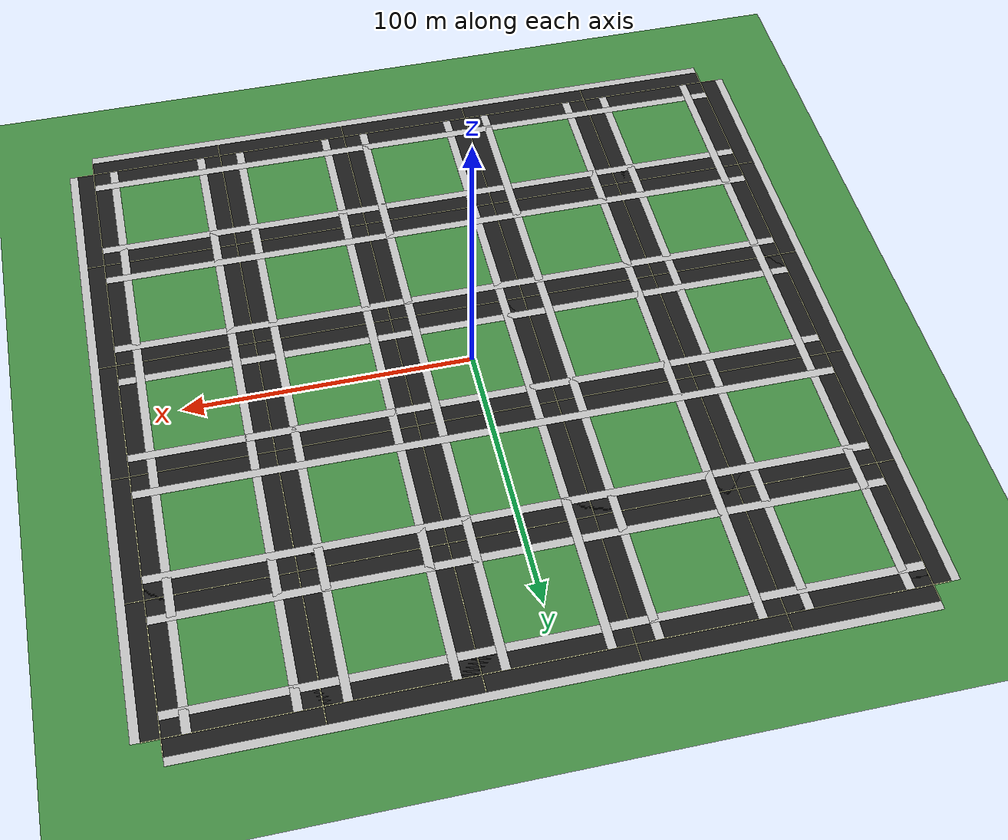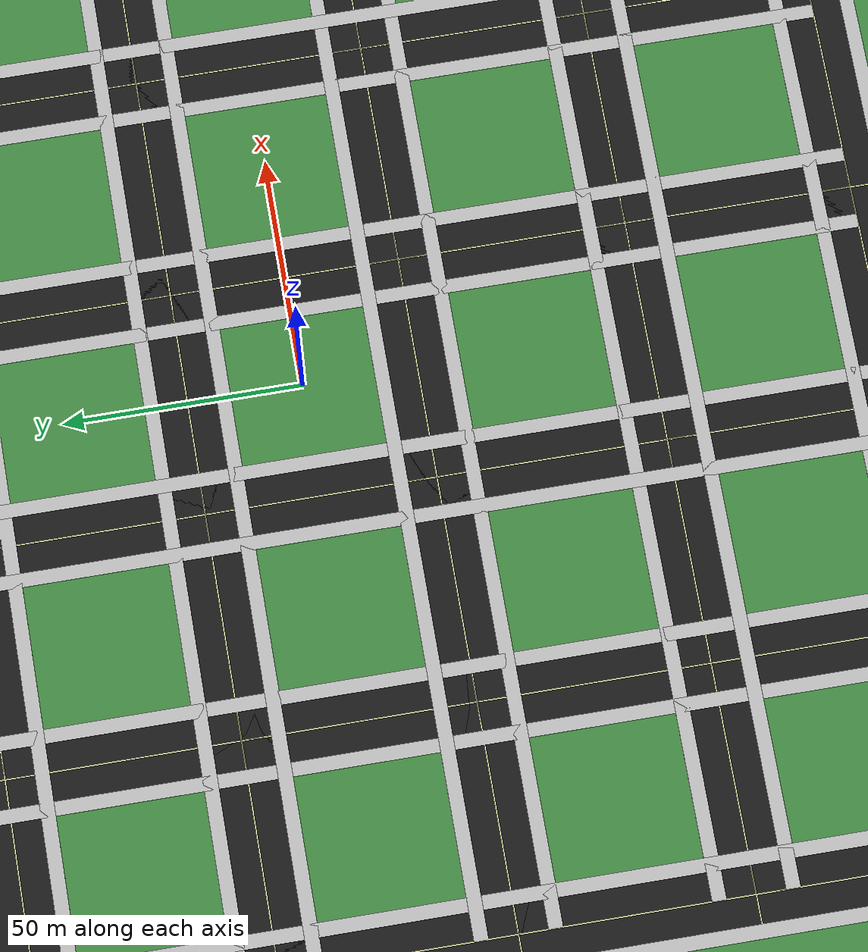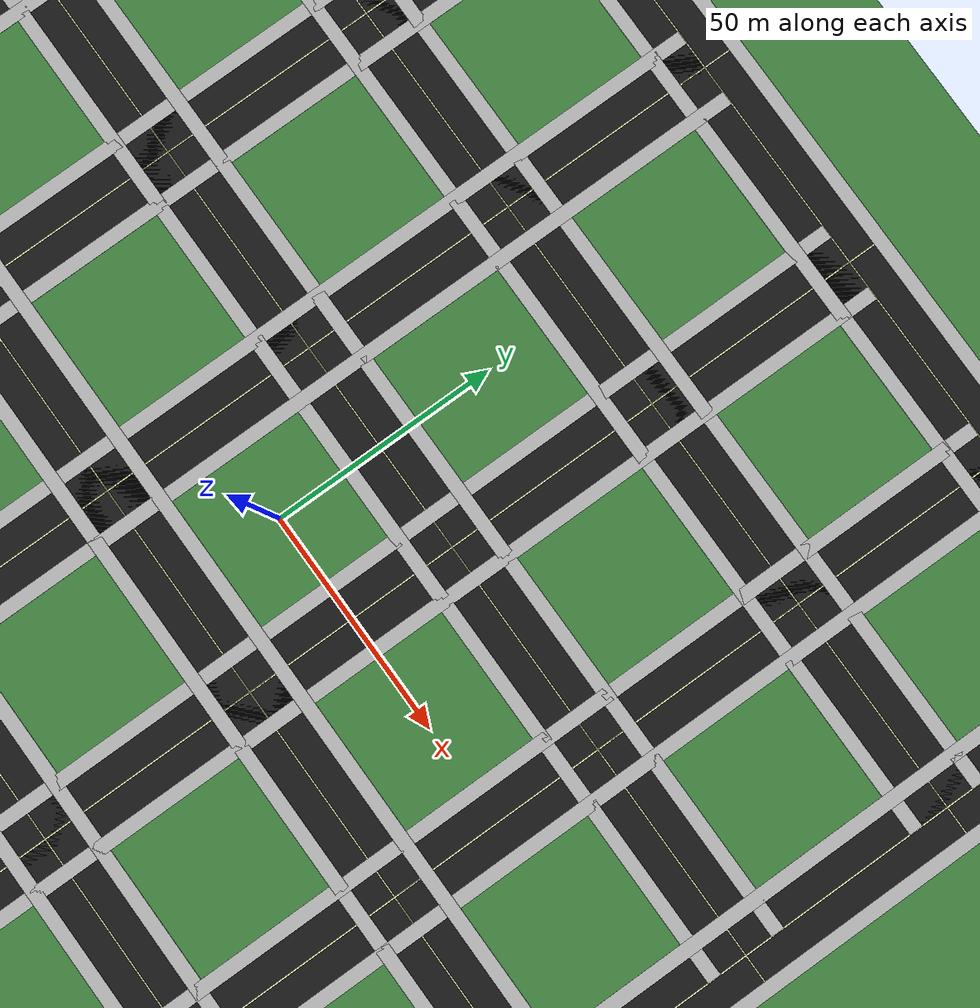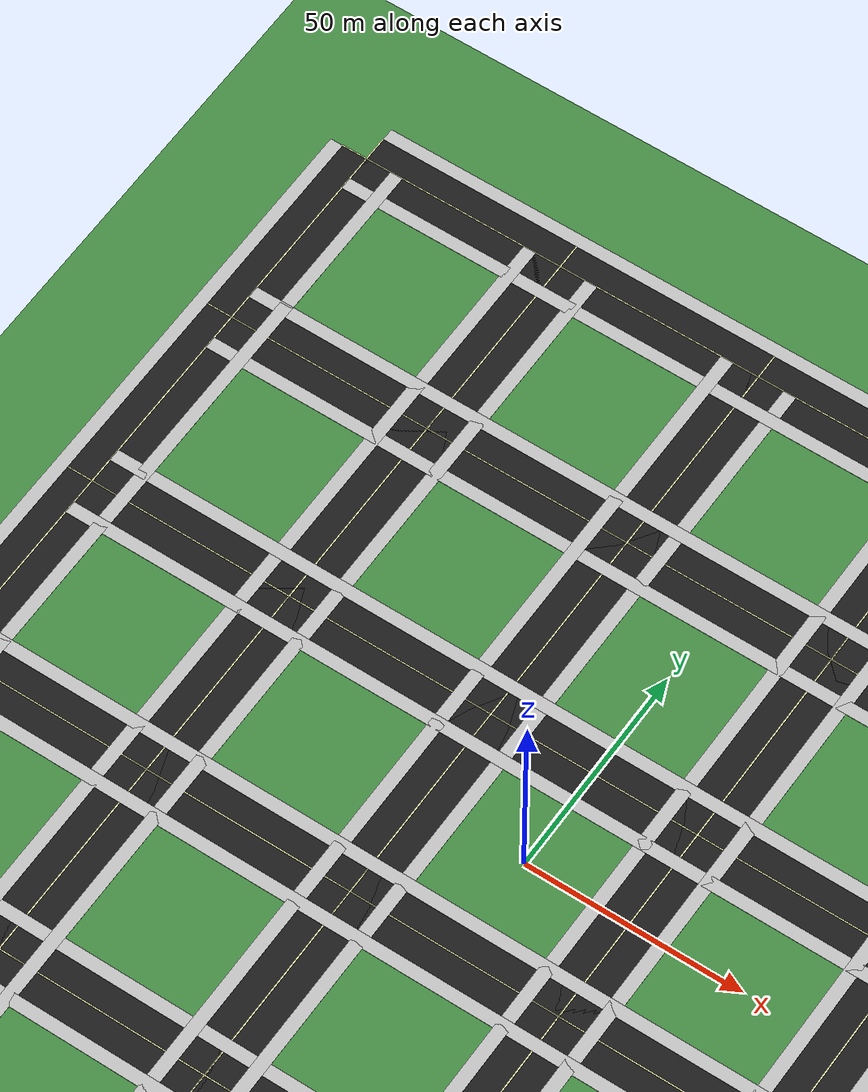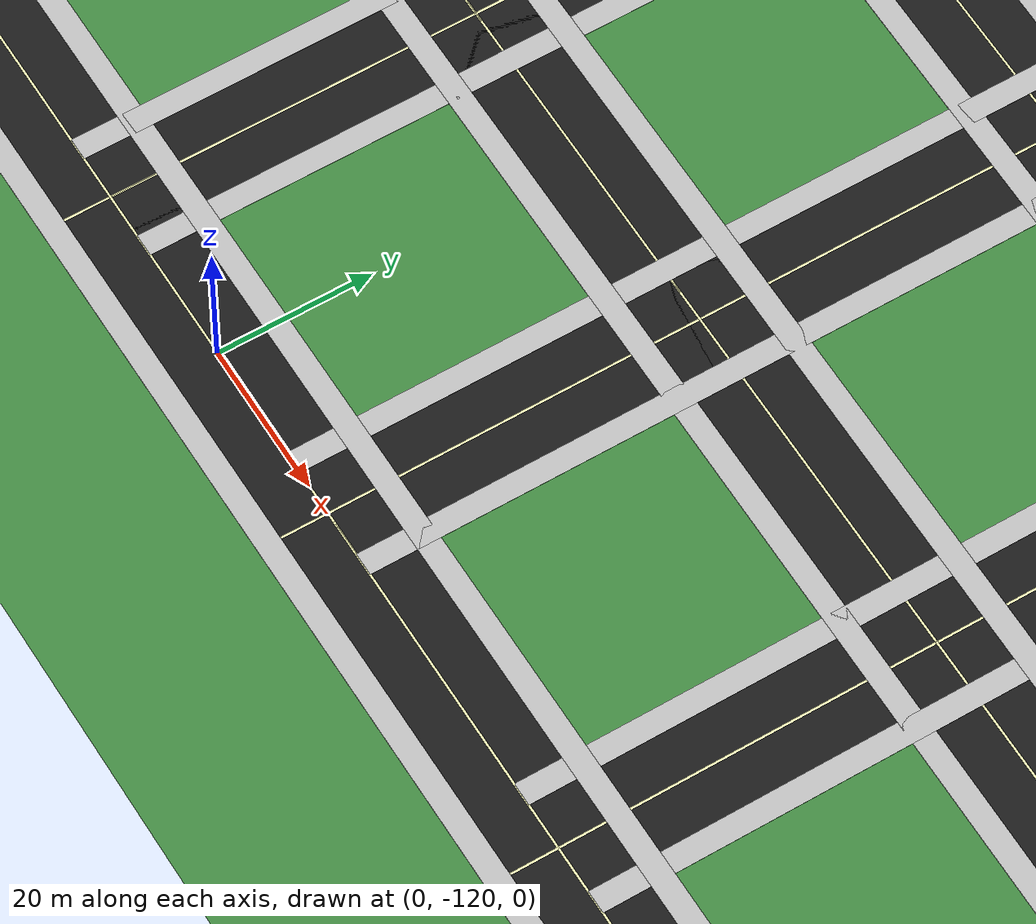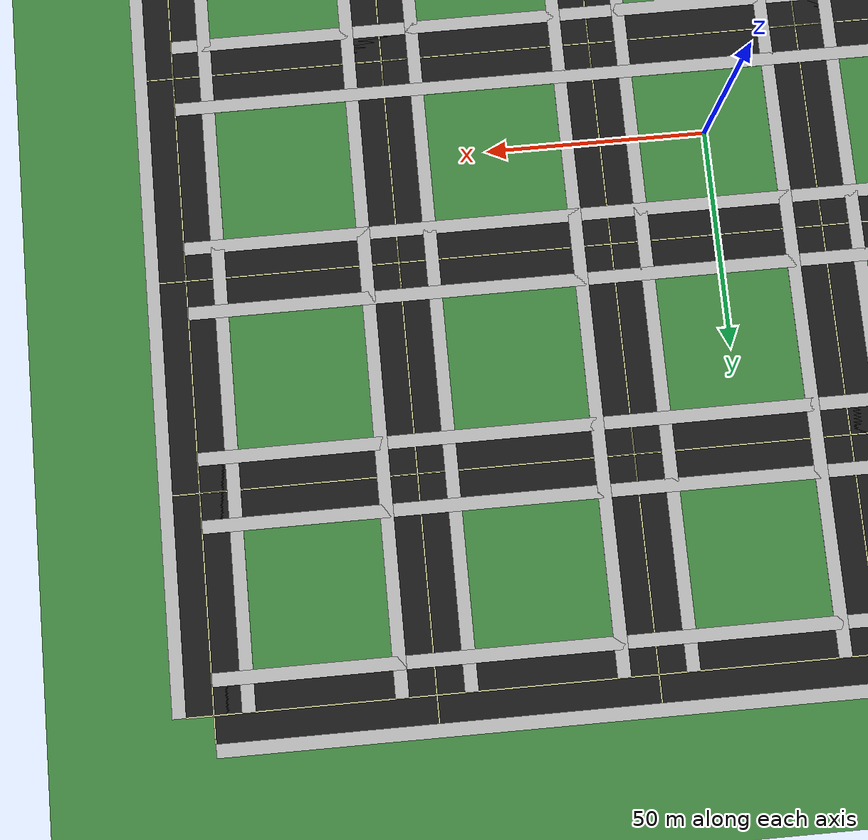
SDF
<sdf version="1.9">
 <world name="earthquake">
  <physics type="dart"><max_step_size>0.004</max_step_size><real_time_factor>1</real_time_factor></physics>
  <plugin filename="gz-sim-physics-system" name="gz::sim::systems::Physics"/>
  <plugin filename="gz-sim-user-commands-system" name="gz::sim::systems::UserCommands"/>
  <plugin filename="gz-sim-scene-broadcaster-system" name="gz::sim::systems::SceneBroadcaster"/>
  <scene>
   <ambient>0.65 0.65 0.65 1</ambient>
   <background>0.72 0.84 0.97 1</background>
   <grid>false</grid>
   <origin_visual>false</origin_visual>
  </scene>
  <light name="sun" type="directional">
   <pose>0 0 200 0 0 0</pose>
   <diffuse>1 1 1 1</diffuse>
   <specular>0.2 0.2 0.2 1</specular>
   <direction>-0.4 0.2 -1</direction>
  </light>
  <model name="ground_plane">
   <static>true</static>
   <link name="link">
    <collision name="collision">
     <geometry><plane><normal>0 0 1</normal><size>1000 1000</size></plane></geometry>
    </collision>
    <visual name="visual">
     <geometry><plane><normal>0 0 1</normal><size>1000 1000</size></plane></geometry>
     <material><ambient>0.25 0.52 0.25 1</ambient><diffuse>0.25 0.52 0.25 1</diffuse></material>
    </visual>
   </link>
  </model>
  <model name="hroad_0">
   <static>true</static>
   <pose>0.00 -120.00 0.010 0 0 0</pose>
   <link name="link">
    <visual name="visual">
     <geometry><box><size>240.000 12.000 0.020</size></box></geometry>
     <material><ambient>0.10 0.10 0.10 1</ambient><diffuse>0.10 0.10 0.10 1</diffuse></material>
    </visual>
   </link>
  </model>
  <model name="hside_top_0">
   <static>true</static>
   <pose>0.00 -112.50 0.030 0 0 0</pose>
   <link name="link">
    <visual name="visual">
     <geometry><box><size>240.000 3.000 0.060</size></box></geometry>
     <material><ambient>0.72 0.72 0.72 1</ambient><diffuse>0.72 0.72 0.72 1</diffuse></material>
    </visual>
   </link>
  </model>
  <model name="hside_bottom_0">
   <static>true</static>
   <pose>0.00 -127.50 0.030 0 0 0</pose>
   <link name="link">
    <visual name="visual">
     <geometry><box><size>240.000 3.000 0.060</size></box></geometry>
     <material><ambient>0.72 0.72 0.72 1</ambient><diffuse>0.72 0.72 0.72 1</diffuse></material>
    </visual>
   </link>
  </model>
  <model name="hline_0">
   <static>true</static>
   <pose>0.00 -120.00 0.041 0 0 0</pose>
   <link name="link">
    <visual name="visual">
     <geometry><box><size>240.000 0.300 0.005</size></box></geometry>
     <material><ambient>0.95 0.95 0.70 1</ambient><diffuse>0.95 0.95 0.70 1</diffuse></material>
    </visual>
   </link>
  </model>
  <model name="hroad_1">
   <static>true</static>
   <pose>0.00 -72.00 0.010 0 0 0</pose>
   <link name="link">
    <visual name="visual">
     <geometry><box><size>240.000 12.000 0.020</size></box></geometry>
     <material><ambient>0.10 0.10 0.10 1</ambient><diffuse>0.10 0.10 0.10 1</diffuse></material>
    </visual>
   </link>
  </model>
  <model name="hside_top_1">
   <static>true</static>
   <pose>0.00 -64.50 0.030 0 0 0</pose>
   <link name="link">
    <visual name="visual">
     <geometry><box><size>240.000 3.000 0.060</size></box></geometry>
     <material><ambient>0.72 0.72 0.72 1</ambient><diffuse>0.72 0.72 0.72 1</diffuse></material>
    </visual>
   </link>
  </model>
  <model name="hside_bottom_1">
   <static>true</static>
   <pose>0.00 -79.50 0.030 0 0 0</pose>
   <link name="link">
    <visual name="visual">
     <geometry><box><size>240.000 3.000 0.060</size></box></geometry>
     <material><ambient>0.72 0.72 0.72 1</ambient><diffuse>0.72 0.72 0.72 1</diffuse></material>
    </visual>
   </link>
  </model>
  <model name="hline_1">
   <static>true</static>
   <pose>0.00 -72.00 0.041 0 0 0</pose>
   <link name="link">
    <visual name="visual">
     <geometry><box><size>240.000 0.300 0.005</size></box></geometry>
     <material><ambient>0.95 0.95 0.70 1</ambient><diffuse>0.95 0.95 0.70 1</diffuse></material>
    </visual>
   </link>
  </model>
  <model name="hroad_2">
   <static>true</static>
   <pose>0.00 -24.00 0.010 0 0 0</pose>
   <link name="link">
    <visual name="visual">
     <geometry><box><size>240.000 12.000 0.020</size></box></geometry>
     <material><ambient>0.10 0.10 0.10 1</ambient><diffuse>0.10 0.10 0.10 1</diffuse></material>
    </visual>
   </link>
  </model>
  <model name="hside_top_2">
   <static>true</static>
   <pose>0.00 -16.50 0.030 0 0 0</pose>
   <link name="link">
    <visual name="visual">
     <geometry><box><size>240.000 3.000 0.060</size></box></geometry>
     <material><ambient>0.72 0.72 0.72 1</ambient><diffuse>0.72 0.72 0.72 1</diffuse></material>
    </visual>
   </link>
  </model>
  <model name="hside_bottom_2">
   <static>true</static>
   <pose>0.00 -31.50 0.030 0 0 0</pose>
   <link name="link">
    <visual name="visual">
     <geometry><box><size>240.000 3.000 0.060</size></box></geometry>
     <material><ambient>0.72 0.72 0.72 1</ambient><diffuse>0.72 0.72 0.72 1</diffuse></material>
    </visual>
   </link>
  </model>
  <model name="hline_2">
   <static>true</static>
   <pose>0.00 -24.00 0.041 0 0 0</pose>
   <link name="link">
    <visual name="visual">
     <geometry><box><size>240.000 0.300 0.005</size></box></geometry>
     <material><ambient>0.95 0.95 0.70 1</ambient><diffuse>0.95 0.95 0.70 1</diffuse></material>
    </visual>
   </link>
  </model>
  <model name="hroad_3">
   <static>true</static>
   <pose>0.00 24.00 0.010 0 0 0</pose>
   <link name="link">
    <visual name="visual">
     <geometry><box><size>240.000 12.000 0.020</size></box></geometry>
     <material><ambient>0.10 0.10 0.10 1</ambient><diffuse>0.10 0.10 0.10 1</diffuse></material>
    </visual>
   </link>
  </model>
  <model name="hside_top_3">
   <static>true</static>
   <pose>0.00 31.50 0.030 0 0 0</pose>
   <link name="link">
    <visual name="visual">
     <geometry><box><size>240.000 3.000 0.060</size></box></geometry>
     <material><ambient>0.72 0.72 0.72 1</ambient><diffuse>0.72 0.72 0.72 1</diffuse></material>
    </visual>
   </link>
  </model>
  <model name="hside_bottom_3">
   <static>true</static>
   <pose>0.00 16.50 0.030 0 0 0</pose>
   <link name="link">
    <visual name="visual">
     <geometry><box><size>240.000 3.000 0.060</size></box></geometry>
     <material><ambient>0.72 0.72 0.72 1</ambient><diffuse>0.72 0.72 0.72 1</diffuse></material>
    </visual>
   </link>
  </model>
  <model name="hline_3">
   <static>true</static>
   <pose>0.00 24.00 0.041 0 0 0</pose>
   <link name="link">
    <visual name="visual">
     <geometry><box><size>240.000 0.300 0.005</size></box></geometry>
     <material><ambient>0.95 0.95 0.70 1</ambient><diffuse>0.95 0.95 0.70 1</diffuse></material>
    </visual>
   </link>
  </model>
  <model name="hroad_4">
   <static>true</static>
   <pose>0.00 72.00 0.010 0 0 0</pose>
   <link name="link">
    <visual name="visual">
     <geometry><box><size>240.000 12.000 0.020</size></box></geometry>
     <material><ambient>0.10 0.10 0.10 1</ambient><diffuse>0.10 0.10 0.10 1</diffuse></material>
    </visual>
   </link>
  </model>
  <model name="hside_top_4">
   <static>true</static>
   <pose>0.00 79.50 0.030 0 0 0</pose>
   <link name="link">
    <visual name="visual">
     <geometry><box><size>240.000 3.000 0.060</size></box></geometry>
     <material><ambient>0.72 0.72 0.72 1</ambient><diffuse>0.72 0.72 0.72 1</diffuse></material>
    </visual>
   </link>
  </model>
  <model name="hside_bottom_4">
   <static>true</static>
   <pose>0.00 64.50 0.030 0 0 0</pose>
   <link name="link">
    <visual name="visual">
     <geometry><box><size>240.000 3.000 0.060</size></box></geometry>
     <material><ambient>0.72 0.72 0.72 1</ambient><diffuse>0.72 0.72 0.72 1</diffuse></material>
    </visual>
   </link>
  </model>
  <model name="hline_4">
   <static>true</static>
   <pose>0.00 72.00 0.041 0 0 0</pose>
   <link name="link">
    <visual name="visual">
     <geometry><box><size>240.000 0.300 0.005</size></box></geometry>
     <material><ambient>0.95 0.95 0.70 1</ambient><diffuse>0.95 0.95 0.70 1</diffuse></material>
    </visual>
   </link>
  </model>
  <model name="hroad_5">
   <static>true</static>
   <pose>0.00 120.00 0.010 0 0 0</pose>
   <link name="link">
    <visual name="visual">
     <geometry><box><size>240.000 12.000 0.020</size></box></geometry>
     <material><ambient>0.10 0.10 0.10 1</ambient><diffuse>0.10 0.10 0.10 1</diffuse></material>
    </visual>
   </link>
  </model>
  <model name="hside_top_5">
   <static>true</static>
   <pose>0.00 127.50 0.030 0 0 0</pose>
   <link name="link">
    <visual name="visual">
     <geometry><box><size>240.000 3.000 0.060</size></box></geometry>
     <material><ambient>0.72 0.72 0.72 1</ambient><diffuse>0.72 0.72 0.72 1</diffuse></material>
    </visual>
   </link>
  </model>
  <model name="hside_bottom_5">
   <static>true</static>
   <pose>0.00 112.50 0.030 0 0 0</pose>
   <link name="link">
    <visual name="visual">
     <geometry><box><size>240.000 3.000 0.060</size></box></geometry>
     <material><ambient>0.72 0.72 0.72 1</ambient><diffuse>0.72 0.72 0.72 1</diffuse></material>
    </visual>
   </link>
  </model>
  <model name="hline_5">
   <static>true</static>
   <pose>0.00 120.00 0.041 0 0 0</pose>
   <link name="link">
    <visual name="visual">
     <geometry><box><size>240.000 0.300 0.005</size></box></geometry>
     <material><ambient>0.95 0.95 0.70 1</ambient><diffuse>0.95 0.95 0.70 1</diffuse></material>
    </visual>
   </link>
  </model>
  <model name="vroad_0">
   <static>true</static>
   <pose>-120.00 0.00 0.010 0 0 0</pose>
   <link name="link">
    <visual name="visual">
     <geometry><box><size>12.000 240.000 0.020</size></box></geometry>
     <material><ambient>0.10 0.10 0.10 1</ambient><diffuse>0.10 0.10 0.10 1</diffuse></material>
    </visual>
   </link>
  </model>
  <model name="vside_left_0">
   <static>true</static>
   <pose>-127.50 0.00 0.030 0 0 0</pose>
   <link name="link">
    <visual name="visual">
     <geometry><box><size>3.000 240.000 0.060</size></box></geometry>
     <material><ambient>0.72 0.72 0.72 1</ambient><diffuse>0.72 0.72 0.72 1</diffuse></material>
    </visual>
   </link>
  </model>
  <model name="vside_right_0">
   <static>true</static>
   <pose>-112.50 0.00 0.030 0 0 0</pose>
   <link name="link">
    <visual name="visual">
     <geometry><box><size>3.000 240.000 0.060</size></box></geometry>
     <material><ambient>0.72 0.72 0.72 1</ambient><diffuse>0.72 0.72 0.72 1</diffuse></material>
    </visual>
   </link>
  </model>
  <model name="vline_0">
   <static>true</static>
   <pose>-120.00 0.00 0.041 0 0 0</pose>
   <link name="link">
    <visual name="visual">
     <geometry><box><size>0.300 240.000 0.005</size></box></geometry>
     <material><ambient>0.95 0.95 0.70 1</ambient><diffuse>0.95 0.95 0.70 1</diffuse></material>
    </visual>
   </link>
  </model>
  <model name="vroad_1">
   <static>true</static>
   <pose>-72.00 0.00 0.010 0 0 0</pose>
   <link name="link">
    <visual name="visual">
     <geometry><box><size>12.000 240.000 0.020</size></box></geometry>
     <material><ambient>0.10 0.10 0.10 1</ambient><diffuse>0.10 0.10 0.10 1</diffuse></material>
    </visual>
   </link>
  </model>
  <model name="vside_left_1">
   <static>true</static>
   <pose>-79.50 0.00 0.030 0 0 0</pose>
   <link name="link">
    <visual name="visual">
     <geometry><box><size>3.000 240.000 0.060</size></box></geometry>
     <material><ambient>0.72 0.72 0.72 1</ambient><diffuse>0.72 0.72 0.72 1</diffuse></material>
    </visual>
   </link>
  </model>
  <model name="vside_right_1">
   <static>true</static>
   <pose>-64.50 0.00 0.030 0 0 0</pose>
   <link name="link">
    <visual name="visual">
     <geometry><box><size>3.000 240.000 0.060</size></box></geometry>
     <material><ambient>0.72 0.72 0.72 1</ambient><diffuse>0.72 0.72 0.72 1</diffuse></material>
    </visual>
   </link>
  </model>
  <model name="vline_1">
   <static>true</static>
   <pose>-72.00 0.00 0.041 0 0 0</pose>
   <link name="link">
    <visual name="visual">
     <geometry><box><size>0.300 240.000 0.005</size></box></geometry>
     <material><ambient>0.95 0.95 0.70 1</ambient><diffuse>0.95 0.95 0.70 1</diffuse></material>
    </visual>
   </link>
  </model>
  <model name="vroad_2">
   <static>true</static>
   <pose>-24.00 0.00 0.010 0 0 0</pose>
   <link name="link">
    <visual name="visual">
     <geometry><box><size>12.000 240.000 0.020</size></box></geometry>
     <material><ambient>0.10 0.10 0.10 1</ambient><diffuse>0.10 0.10 0.10 1</diffuse></material>
    </visual>
   </link>
  </model>
  <model name="vside_left_2">
   <static>true</static>
   <pose>-31.50 0.00 0.030 0 0 0</pose>
   <link name="link">
    <visual name="visual">
     <geometry><box><size>3.000 240.000 0.060</size></box></geometry>
     <material><ambient>0.72 0.72 0.72 1</ambient><diffuse>0.72 0.72 0.72 1</diffuse></material>
    </visual>
   </link>
  </model>
  <model name="vside_right_2">
   <static>true</static>
   <pose>-16.50 0.00 0.030 0 0 0</pose>
   <link name="link">
    <visual name="visual">
     <geometry><box><size>3.000 240.000 0.060</size></box></geometry>
     <material><ambient>0.72 0.72 0.72 1</ambient><diffuse>0.72 0.72 0.72 1</diffuse></material>
    </visual>
   </link>
  </model>
  <model name="vline_2">
   <static>true</static>
   <pose>-24.00 0.00 0.041 0 0 0</pose>
   <link name="link">
    <visual name="visual">
     <geometry><box><size>0.300 240.000 0.005</size></box></geometry>
     <material><ambient>0.95 0.95 0.70 1</ambient><diffuse>0.95 0.95 0.70 1</diffuse></material>
    </visual>
   </link>
  </model>
  <model name="vroad_3">
   <static>true</static>
   <pose>24.00 0.00 0.010 0 0 0</pose>
   <link name="link">
    <visual name="visual">
     <geometry><box><size>12.000 240.000 0.020</size></box></geometry>
     <material><ambient>0.10 0.10 0.10 1</ambient><diffuse>0.10 0.10 0.10 1</diffuse></material>
    </visual>
   </link>
  </model>
  <model name="vside_left_3">
   <static>true</static>
   <pose>16.50 0.00 0.030 0 0 0</pose>
   <link name="link">
    <visual name="visual">
     <geometry><box><size>3.000 240.000 0.060</size></box></geometry>
     <material><ambient>0.72 0.72 0.72 1</ambient><diffuse>0.72 0.72 0.72 1</diffuse></material>
    </visual>
   </link>
  </model>
  <model name="vside_right_3">
   <static>true</static>
   <pose>31.50 0.00 0.030 0 0 0</pose>
   <link name="link">
    <visual name="visual">
     <geometry><box><size>3.000 240.000 0.060</size></box></geometry>
     <material><ambient>0.72 0.72 0.72 1</ambient><diffuse>0.72 0.72 0.72 1</diffuse></material>
    </visual>
   </link>
  </model>
  <model name="vline_3">
   <static>true</static>
   <pose>24.00 0.00 0.041 0 0 0</pose>
   <link name="link">
    <visual name="visual">
     <geometry><box><size>0.300 240.000 0.005</size></box></geometry>
     <material><ambient>0.95 0.95 0.70 1</ambient><diffuse>0.95 0.95 0.70 1</diffuse></material>
    </visual>
   </link>
  </model>
  <model name="vroad_4">
   <static>true</static>
   <pose>72.00 0.00 0.010 0 0 0</pose>
   <link name="link">
    <visual name="visual">
     <geometry><box><size>12.000 240.000 0.020</size></box></geometry>
     <material><ambient>0.10 0.10 0.10 1</ambient><diffuse>0.10 0.10 0.10 1</diffuse></material>
    </visual>
   </link>
  </model>
  <model name="vside_left_4">
   <static>true</static>
   <pose>64.50 0.00 0.030 0 0 0</pose>
   <link name="link">
    <visual name="visual">
     <geometry><box><size>3.000 240.000 0.060</size></box></geometry>
     <material><ambient>0.72 0.72 0.72 1</ambient><diffuse>0.72 0.72 0.72 1</diffuse></material>
    </visual>
   </link>
  </model>
  <model name="vside_right_4">
   <static>true</static>
   <pose>79.50 0.00 0.030 0 0 0</pose>
   <link name="link">
    <visual name="visual">
     <geometry><box><size>3.000 240.000 0.060</size></box></geometry>
     <material><ambient>0.72 0.72 0.72 1</ambient><diffuse>0.72 0.72 0.72 1</diffuse></material>
    </visual>
   </link>
  </model>
  <model name="vline_4">
   <static>true</static>
   <pose>72.00 0.00 0.041 0 0 0</pose>
   <link name="link">
    <visual name="visual">
     <geometry><box><size>0.300 240.000 0.005</size></box></geometry>
     <material><ambient>0.95 0.95 0.70 1</ambient><diffuse>0.95 0.95 0.70 1</diffuse></material>
    </visual>
   </link>
  </model>
  <model name="vroad_5">
   <static>true</static>
   <pose>120.00 0.00 0.010 0 0 0</pose>
   <link name="link">
    <visual name="visual">
     <geometry><box><size>12.000 240.000 0.020</size></box></geometry>
     <material><ambient>0.10 0.10 0.10 1</ambient><diffuse>0.10 0.10 0.10 1</diffuse></material>
    </visual>
   </link>
  </model>
  <model name="vside_left_5">
   <static>true</static>
   <pose>112.50 0.00 0.030 0 0 0</pose>
   <link name="link">
    <visual name="visual">
     <geometry><box><size>3.000 240.000 0.060</size></box></geometry>
     <material><ambient>0.72 0.72 0.72 1</ambient><diffuse>0.72 0.72 0.72 1</diffuse></material>
    </visual>
   </link>
  </model>
  <model name="vside_right_5">
   <static>true</static>
   <pose>127.50 0.00 0.030 0 0 0</pose>
   <link name="link">
    <visual name="visual">
     <geometry><box><size>3.000 240.000 0.060</size></box></geometry>
     <material><ambient>0.72 0.72 0.72 1</ambient><diffuse>0.72 0.72 0.72 1</diffuse></material>
    </visual>
   </link>
  </model>
  <model name="vline_5">
   <static>true</static>
   <pose>120.00 0.00 0.041 0 0 0</pose>
   <link name="link">
    <visual name="visual">
     <geometry><box><size>0.300 240.000 0.005</size></box></geometry>
     <material><ambient>0.95 0.95 0.70 1</ambient><diffuse>0.95 0.95 0.70 1</diffuse></material>
    </visual>
   </link>
  </model>
  <model name="intersection_0_0">
   <static>true</static>
   <pose>-120.00 -120.00 0.041 0 0 0</pose>
   <link name="link">
    <visual name="visual">
     <geometry><box><size>12.000 0.300 0.005</size></box></geometry>
     <material><ambient>0.95 0.95 0.70 1</ambient><diffuse>0.95 0.95 0.70 1</diffuse></material>
    </visual>
   </link>
  </model>
  <model name="intersection_cross_0_0">
   <static>true</static>
   <pose>-120.00 -120.00 0.041 0 0 0</pose>
   <link name="link">
    <visual name="visual">
     <geometry><box><size>0.300 12.000 0.005</size></box></geometry>
     <material><ambient>0.95 0.95 0.70 1</ambient><diffuse>0.95 0.95 0.70 1</diffuse></material>
    </visual>
   </link>
  </model>
  <model name="intersection_0_1">
   <static>true</static>
   <pose>-72.00 -120.00 0.041 0 0 0</pose>
   <link name="link">
    <visual name="visual">
     <geometry><box><size>12.000 0.300 0.005</size></box></geometry>
     <material><ambient>0.95 0.95 0.70 1</ambient><diffuse>0.95 0.95 0.70 1</diffuse></material>
    </visual>
   </link>
  </model>
  <model name="intersection_cross_0_1">
   <static>true</static>
   <pose>-72.00 -120.00 0.041 0 0 0</pose>
   <link name="link">
    <visual name="visual">
     <geometry><box><size>0.300 12.000 0.005</size></box></geometry>
     <material><ambient>0.95 0.95 0.70 1</ambient><diffuse>0.95 0.95 0.70 1</diffuse></material>
    </visual>
   </link>
  </model>
  <model name="intersection_0_2">
   <static>true</static>
   <pose>-24.00 -120.00 0.041 0 0 0</pose>
   <link name="link">
    <visual name="visual">
     <geometry><box><size>12.000 0.300 0.005</size></box></geometry>
     <material><ambient>0.95 0.95 0.70 1</ambient><diffuse>0.95 0.95 0.70 1</diffuse></material>
    </visual>
   </link>
  </model>
  <model name="intersection_cross_0_2">
   <static>true</static>
   <pose>-24.00 -120.00 0.041 0 0 0</pose>
   <link name="link">
    <visual name="visual">
     <geometry><box><size>0.300 12.000 0.005</size></box></geometry>
     <material><ambient>0.95 0.95 0.70 1</ambient><diffuse>0.95 0.95 0.70 1</diffuse></material>
    </visual>
   </link>
  </model>
  <model name="intersection_0_3">
   <static>true</static>
   <pose>24.00 -120.00 0.041 0 0 0</pose>
   <link name="link">
    <visual name="visual">
     <geometry><box><size>12.000 0.300 0.005</size></box></geometry>
     <material><ambient>0.95 0.95 0.70 1</ambient><diffuse>0.95 0.95 0.70 1</diffuse></material>
    </visual>
   </link>
  </model>
  <model name="intersection_cross_0_3">
   <static>true</static>
   <pose>24.00 -120.00 0.041 0 0 0</pose>
   <link name="link">
    <visual name="visual">
     <geometry><box><size>0.300 12.000 0.005</size></box></geometry>
     <material><ambient>0.95 0.95 0.70 1</ambient><diffuse>0.95 0.95 0.70 1</diffuse></material>
    </visual>
   </link>
  </model>
  <model name="intersection_0_4">
   <static>true</static>
   <pose>72.00 -120.00 0.041 0 0 0</pose>
   <link name="link">
    <visual name="visual">
     <geometry><box><size>12.000 0.300 0.005</size></box></geometry>
     <material><ambient>0.95 0.95 0.70 1</ambient><diffuse>0.95 0.95 0.70 1</diffuse></material>
    </visual>
   </link>
  </model>
  <model name="intersection_cross_0_4">
   <static>true</static>
   <pose>72.00 -120.00 0.041 0 0 0</pose>
   <link name="link">
    <visual name="visual">
     <geometry><box><size>0.300 12.000 0.005</size></box></geometry>
     <material><ambient>0.95 0.95 0.70 1</ambient><diffuse>0.95 0.95 0.70 1</diffuse></material>
    </visual>
   </link>
  </model>
  <model name="intersection_0_5">
   <static>true</static>
   <pose>120.00 -120.00 0.041 0 0 0</pose>
   <link name="link">
    <visual name="visual">
     <geometry><box><size>12.000 0.300 0.005</size></box></geometry>
     <material><ambient>0.95 0.95 0.70 1</ambient><diffuse>0.95 0.95 0.70 1</diffuse></material>
    </visual>
   </link>
  </model>
  <model name="intersection_cross_0_5">
   <static>true</static>
   <pose>120.00 -120.00 0.041 0 0 0</pose>
   <link name="link">
    <visual name="visual">
     <geometry><box><size>0.300 12.000 0.005</size></box></geometry>
     <material><ambient>0.95 0.95 0.70 1</ambient><diffuse>0.95 0.95 0.70 1</diffuse></material>
    </visual>
   </link>
  </model>
  <model name="intersection_1_0">
   <static>true</static>
   <pose>-120.00 -72.00 0.041 0 0 0</pose>
   <link name="link">
    <visual name="visual">
     <geometry><box><size>12.000 0.300 0.005</size></box></geometry>
     <material><ambient>0.95 0.95 0.70 1</ambient><diffuse>0.95 0.95 0.70 1</diffuse></material>
    </visual>
   </link>
  </model>
  <model name="intersection_cross_1_0">
   <static>true</static>
   <pose>-120.00 -72.00 0.041 0 0 0</pose>
   <link name="link">
    <visual name="visual">
     <geometry><box><size>0.300 12.000 0.005</size></box></geometry>
     <material><ambient>0.95 0.95 0.70 1</ambient><diffuse>0.95 0.95 0.70 1</diffuse></material>
    </visual>
   </link>
  </model>
  <model name="intersection_1_1">
   <static>true</static>
   <pose>-72.00 -72.00 0.041 0 0 0</pose>
   <link name="link">
    <visual name="visual">
     <geometry><box><size>12.000 0.300 0.005</size></box></geometry>
     <material><ambient>0.95 0.95 0.70 1</ambient><diffuse>0.95 0.95 0.70 1</diffuse></material>
    </visual>
   </link>
  </model>
  <model name="intersection_cross_1_1">
   <static>true</static>
   <pose>-72.00 -72.00 0.041 0 0 0</pose>
   <link name="link">
    <visual name="visual">
     <geometry><box><size>0.300 12.000 0.005</size></box></geometry>
     <material><ambient>0.95 0.95 0.70 1</ambient><diffuse>0.95 0.95 0.70 1</diffuse></material>
    </visual>
   </link>
  </model>
  <model name="intersection_1_2">
   <static>true</static>
   <pose>-24.00 -72.00 0.041 0 0 0</pose>
   <link name="link">
    <visual name="visual">
     <geometry><box><size>12.000 0.300 0.005</size></box></geometry>
     <material><ambient>0.95 0.95 0.70 1</ambient><diffuse>0.95 0.95 0.70 1</diffuse></material>
    </visual>
   </link>
  </model>
  <model name="intersection_cross_1_2">
   <static>true</static>
   <pose>-24.00 -72.00 0.041 0 0 0</pose>
   <link name="link">
    <visual name="visual">
     <geometry><box><size>0.300 12.000 0.005</size></box></geometry>
     <material><ambient>0.95 0.95 0.70 1</ambient><diffuse>0.95 0.95 0.70 1</diffuse></material>
    </visual>
   </link>
  </model>
  <model name="intersection_1_3">
   <static>true</static>
   <pose>24.00 -72.00 0.041 0 0 0</pose>
   <link name="link">
    <visual name="visual">
     <geometry><box><size>12.000 0.300 0.005</size></box></geometry>
     <material><ambient>0.95 0.95 0.70 1</ambient><diffuse>0.95 0.95 0.70 1</diffuse></material>
    </visual>
   </link>
  </model>
  <model name="intersection_cross_1_3">
   <static>true</static>
   <pose>24.00 -72.00 0.041 0 0 0</pose>
   <link name="link">
    <visual name="visual">
     <geometry><box><size>0.300 12.000 0.005</size></box></geometry>
     <material><ambient>0.95 0.95 0.70 1</ambient><diffuse>0.95 0.95 0.70 1</diffuse></material>
    </visual>
   </link>
  </model>
  <model name="intersection_1_4">
   <static>true</static>
   <pose>72.00 -72.00 0.041 0 0 0</pose>
   <link name="link">
    <visual name="visual">
     <geometry><box><size>12.000 0.300 0.005</size></box></geometry>
     <material><ambient>0.95 0.95 0.70 1</ambient><diffuse>0.95 0.95 0.70 1</diffuse></material>
    </visual>
   </link>
  </model>
  <model name="intersection_cross_1_4">
   <static>true</static>
   <pose>72.00 -72.00 0.041 0 0 0</pose>
   <link name="link">
    <visual name="visual">
     <geometry><box><size>0.300 12.000 0.005</size></box></geometry>
     <material><ambient>0.95 0.95 0.70 1</ambient><diffuse>0.95 0.95 0.70 1</diffuse></material>
    </visual>
   </link>
  </model>
  <model name="intersection_1_5">
   <static>true</static>
   <pose>120.00 -72.00 0.041 0 0 0</pose>
   <link name="link">
    <visual name="visual">
     <geometry><box><size>12.000 0.300 0.005</size></box></geometry>
     <material><ambient>0.95 0.95 0.70 1</ambient><diffuse>0.95 0.95 0.70 1</diffuse></material>
    </visual>
   </link>
  </model>
  <model name="intersection_cross_1_5">
   <static>true</static>
   <pose>120.00 -72.00 0.041 0 0 0</pose>
   <link name="link">
    <visual name="visual">
     <geometry><box><size>0.300 12.000 0.005</size></box></geometry>
     <material><ambient>0.95 0.95 0.70 1</ambient><diffuse>0.95 0.95 0.70 1</diffuse></material>
    </visual>
   </link>
  </model>
  <model name="intersection_2_0">
   <static>true</static>
   <pose>-120.00 -24.00 0.041 0 0 0</pose>
   <link name="link">
    <visual name="visual">
     <geometry><box><size>12.000 0.300 0.005</size></box></geometry>
     <material><ambient>0.95 0.95 0.70 1</ambient><diffuse>0.95 0.95 0.70 1</diffuse></material>
    </visual>
   </link>
  </model>
  <model name="intersection_cross_2_0">
   <static>true</static>
   <pose>-120.00 -24.00 0.041 0 0 0</pose>
   <link name="link">
    <visual name="visual">
     <geometry><box><size>0.300 12.000 0.005</size></box></geometry>
     <material><ambient>0.95 0.95 0.70 1</ambient><diffuse>0.95 0.95 0.70 1</diffuse></material>
    </visual>
   </link>
  </model>
  <model name="intersection_2_1">
   <static>true</static>
   <pose>-72.00 -24.00 0.041 0 0 0</pose>
   <link name="link">
    <visual name="visual">
     <geometry><box><size>12.000 0.300 0.005</size></box></geometry>
     <material><ambient>0.95 0.95 0.70 1</ambient><diffuse>0.95 0.95 0.70 1</diffuse></material>
    </visual>
   </link>
  </model>
  <model name="intersection_cross_2_1">
   <static>true</static>
   <pose>-72.00 -24.00 0.041 0 0 0</pose>
   <link name="link">
    <visual name="visual">
     <geometry><box><size>0.300 12.000 0.005</size></box></geometry>
     <material><ambient>0.95 0.95 0.70 1</ambient><diffuse>0.95 0.95 0.70 1</diffuse></material>
    </visual>
   </link>
  </model>
  <model name="intersection_2_2">
   <static>true</static>
   <pose>-24.00 -24.00 0.041 0 0 0</pose>
   <link name="link">
    <visual name="visual">
     <geometry><box><size>12.000 0.300 0.005</size></box></geometry>
     <material><ambient>0.95 0.95 0.70 1</ambient><diffuse>0.95 0.95 0.70 1</diffuse></material>
    </visual>
   </link>
  </model>
  <model name="intersection_cross_2_2">
   <static>true</static>
   <pose>-24.00 -24.00 0.041 0 0 0</pose>
   <link name="link">
    <visual name="visual">
     <geometry><box><size>0.300 12.000 0.005</size></box></geometry>
     <material><ambient>0.95 0.95 0.70 1</ambient><diffuse>0.95 0.95 0.70 1</diffuse></material>
    </visual>
   </link>
  </model>
  <model name="intersection_2_3">
   <static>true</static>
   <pose>24.00 -24.00 0.041 0 0 0</pose>
   <link name="link">
    <visual name="visual">
     <geometry><box><size>12.000 0.300 0.005</size></box></geometry>
     <material><ambient>0.95 0.95 0.70 1</ambient><diffuse>0.95 0.95 0.70 1</diffuse></material>
    </visual>
   </link>
  </model>
  <model name="intersection_cross_2_3">
   <static>true</static>
   <pose>24.00 -24.00 0.041 0 0 0</pose>
   <link name="link">
    <visual name="visual">
     <geometry><box><size>0.300 12.000 0.005</size></box></geometry>
     <material><ambient>0.95 0.95 0.70 1</ambient><diffuse>0.95 0.95 0.70 1</diffuse></material>
    </visual>
   </link>
  </model>
  <model name="intersection_2_4">
   <static>true</static>
   <pose>72.00 -24.00 0.041 0 0 0</pose>
   <link name="link">
    <visual name="visual">
     <geometry><box><size>12.000 0.300 0.005</size></box></geometry>
     <material><ambient>0.95 0.95 0.70 1</ambient><diffuse>0.95 0.95 0.70 1</diffuse></material>
    </visual>
   </link>
  </model>
  <model name="intersection_cross_2_4">
   <static>true</static>
   <pose>72.00 -24.00 0.041 0 0 0</pose>
   <link name="link">
    <visual name="visual">
     <geometry><box><size>0.300 12.000 0.005</size></box></geometry>
     <material><ambient>0.95 0.95 0.70 1</ambient><diffuse>0.95 0.95 0.70 1</diffuse></material>
    </visual>
   </link>
  </model>
  <model name="intersection_2_5">
   <static>true</static>
   <pose>120.00 -24.00 0.041 0 0 0</pose>
   <link name="link">
    <visual name="visual">
     <geometry><box><size>12.000 0.300 0.005</size></box></geometry>
     <material><ambient>0.95 0.95 0.70 1</ambient><diffuse>0.95 0.95 0.70 1</diffuse></material>
    </visual>
   </link>
  </model>
  <model name="intersection_cross_2_5">
   <static>true</static>
   <pose>120.00 -24.00 0.041 0 0 0</pose>
   <link name="link">
    <visual name="visual">
     <geometry><box><size>0.300 12.000 0.005</size></box></geometry>
     <material><ambient>0.95 0.95 0.70 1</ambient><diffuse>0.95 0.95 0.70 1</diffuse></material>
    </visual>
   </link>
  </model>
  <model name="intersection_3_0">
   <static>true</static>
   <pose>-120.00 24.00 0.041 0 0 0</pose>
   <link name="link">
    <visual name="visual">
     <geometry><box><size>12.000 0.300 0.005</size></box></geometry>
     <material><ambient>0.95 0.95 0.70 1</ambient><diffuse>0.95 0.95 0.70 1</diffuse></material>
    </visual>
   </link>
  </model>
  <model name="intersection_cross_3_0">
   <static>true</static>
   <pose>-120.00 24.00 0.041 0 0 0</pose>
   <link name="link">
    <visual name="visual">
     <geometry><box><size>0.300 12.000 0.005</size></box></geometry>
     <material><ambient>0.95 0.95 0.70 1</ambient><diffuse>0.95 0.95 0.70 1</diffuse></material>
    </visual>
   </link>
  </model>
  <model name="intersection_3_1">
   <static>true</static>
   <pose>-72.00 24.00 0.041 0 0 0</pose>
   <link name="link">
    <visual name="visual">
     <geometry><box><size>12.000 0.300 0.005</size></box></geometry>
     <material><ambient>0.95 0.95 0.70 1</ambient><diffuse>0.95 0.95 0.70 1</diffuse></material>
    </visual>
   </link>
  </model>
  <model name="intersection_cross_3_1">
   <static>true</static>
   <pose>-72.00 24.00 0.041 0 0 0</pose>
   <link name="link">
    <visual name="visual">
     <geometry><box><size>0.300 12.000 0.005</size></box></geometry>
     <material><ambient>0.95 0.95 0.70 1</ambient><diffuse>0.95 0.95 0.70 1</diffuse></material>
    </visual>
   </link>
  </model>
  <model name="intersection_3_2">
   <static>true</static>
   <pose>-24.00 24.00 0.041 0 0 0</pose>
   <link name="link">
    <visual name="visual">
     <geometry><box><size>12.000 0.300 0.005</size></box></geometry>
     <material><ambient>0.95 0.95 0.70 1</ambient><diffuse>0.95 0.95 0.70 1</diffuse></material>
    </visual>
   </link>
  </model>
  <model name="intersection_cross_3_2">
   <static>true</static>
   <pose>-24.00 24.00 0.041 0 0 0</pose>
   <link name="link">
    <visual name="visual">
     <geometry><box><size>0.300 12.000 0.005</size></box></geometry>
     <material><ambient>0.95 0.95 0.70 1</ambient><diffuse>0.95 0.95 0.70 1</diffuse></material>
    </visual>
   </link>
  </model>
  <model name="intersection_3_3">
   <static>true</static>
   <pose>24.00 24.00 0.041 0 0 0</pose>
   <link name="link">
    <visual name="visual">
     <geometry><box><size>12.000 0.300 0.005</size></box></geometry>
     <material><ambient>0.95 0.95 0.70 1</ambient><diffuse>0.95 0.95 0.70 1</diffuse></material>
    </visual>
   </link>
  </model>
  <model name="intersection_cross_3_3">
   <static>true</static>
   <pose>24.00 24.00 0.041 0 0 0</pose>
   <link name="link">
    <visual name="visual">
     <geometry><box><size>0.300 12.000 0.005</size></box></geometry>
     <material><ambient>0.95 0.95 0.70 1</ambient><diffuse>0.95 0.95 0.70 1</diffuse></material>
    </visual>
   </link>
  </model>
  <model name="intersection_3_4">
   <static>true</static>
   <pose>72.00 24.00 0.041 0 0 0</pose>
   <link name="link">
    <visual name="visual">
     <geometry><box><size>12.000 0.300 0.005</size></box></geometry>
     <material><ambient>0.95 0.95 0.70 1</ambient><diffuse>0.95 0.95 0.70 1</diffuse></material>
    </visual>
   </link>
  </model>
  <model name="intersection_cross_3_4">
   <static>true</static>
   <pose>72.00 24.00 0.041 0 0 0</pose>
   <link name="link">
    <visual name="visual">
     <geometry><box><size>0.300 12.000 0.005</size></box></geometry>
     <material><ambient>0.95 0.95 0.70 1</ambient><diffuse>0.95 0.95 0.70 1</diffuse></material>
    </visual>
   </link>
  </model>
  <model name="intersection_3_5">
   <static>true</static>
   <pose>120.00 24.00 0.041 0 0 0</pose>
   <link name="link">
    <visual name="visual">
     <geometry><box><size>12.000 0.300 0.005</size></box></geometry>
     <material><ambient>0.95 0.95 0.70 1</ambient><diffuse>0.95 0.95 0.70 1</diffuse></material>
    </visual>
   </link>
  </model>
  <model name="intersection_cross_3_5">
   <static>true</static>
   <pose>120.00 24.00 0.041 0 0 0</pose>
   <link name="link">
    <visual name="visual">
     <geometry><box><size>0.300 12.000 0.005</size></box></geometry>
     <material><ambient>0.95 0.95 0.70 1</ambient><diffuse>0.95 0.95 0.70 1</diffuse></material>
    </visual>
   </link>
  </model>
  <model name="intersection_4_0">
   <static>true</static>
   <pose>-120.00 72.00 0.041 0 0 0</pose>
   <link name="link">
    <visual name="visual">
     <geometry><box><size>12.000 0.300 0.005</size></box></geometry>
     <material><ambient>0.95 0.95 0.70 1</ambient><diffuse>0.95 0.95 0.70 1</diffuse></material>
    </visual>
   </link>
  </model>
  <model name="intersection_cross_4_0">
   <static>true</static>
   <pose>-120.00 72.00 0.041 0 0 0</pose>
   <link name="link">
    <visual name="visual">
     <geometry><box><size>0.300 12.000 0.005</size></box></geometry>
     <material><ambient>0.95 0.95 0.70 1</ambient><diffuse>0.95 0.95 0.70 1</diffuse></material>
    </visual>
   </link>
  </model>
  <model name="intersection_4_1">
   <static>true</static>
   <pose>-72.00 72.00 0.041 0 0 0</pose>
   <link name="link">
    <visual name="visual">
     <geometry><box><size>12.000 0.300 0.005</size></box></geometry>
     <material><ambient>0.95 0.95 0.70 1</ambient><diffuse>0.95 0.95 0.70 1</diffuse></material>
    </visual>
   </link>
  </model>
  <model name="intersection_cross_4_1">
   <static>true</static>
   <pose>-72.00 72.00 0.041 0 0 0</pose>
   <link name="link">
    <visual name="visual">
     <geometry><box><size>0.300 12.000 0.005</size></box></geometry>
     <material><ambient>0.95 0.95 0.70 1</ambient><diffuse>0.95 0.95 0.70 1</diffuse></material>
    </visual>
   </link>
  </model>
  <model name="intersection_4_2">
   <static>true</static>
   <pose>-24.00 72.00 0.041 0 0 0</pose>
   <link name="link">
    <visual name="visual">
     <geometry><box><size>12.000 0.300 0.005</size></box></geometry>
     <material><ambient>0.95 0.95 0.70 1</ambient><diffuse>0.95 0.95 0.70 1</diffuse></material>
    </visual>
   </link>
  </model>
  <model name="intersection_cross_4_2">
   <static>true</static>
   <pose>-24.00 72.00 0.041 0 0 0</pose>
   <link name="link">
    <visual name="visual">
     <geometry><box><size>0.300 12.000 0.005</size></box></geometry>
     <material><ambient>0.95 0.95 0.70 1</ambient><diffuse>0.95 0.95 0.70 1</diffuse></material>
    </visual>
   </link>
  </model>
  <model name="intersection_4_3">
   <static>true</static>
   <pose>24.00 72.00 0.041 0 0 0</pose>
   <link name="link">
    <visual name="visual">
     <geometry><box><size>12.000 0.300 0.005</size></box></geometry>
     <material><ambient>0.95 0.95 0.70 1</ambient><diffuse>0.95 0.95 0.70 1</diffuse></material>
    </visual>
   </link>
  </model>
  <model name="intersection_cross_4_3">
   <static>true</static>
   <pose>24.00 72.00 0.041 0 0 0</pose>
   <link name="link">
    <visual name="visual">
     <geometry><box><size>0.300 12.000 0.005</size></box></geometry>
     <material><ambient>0.95 0.95 0.70 1</ambient><diffuse>0.95 0.95 0.70 1</diffuse></material>
    </visual>
   </link>
  </model>
  <model name="intersection_4_4">
   <static>true</static>
   <pose>72.00 72.00 0.041 0 0 0</pose>
   <link name="link">
    <visual name="visual">
     <geometry><box><size>12.000 0.300 0.005</size></box></geometry>
     <material><ambient>0.95 0.95 0.70 1</ambient><diffuse>0.95 0.95 0.70 1</diffuse></material>
    </visual>
   </link>
  </model>
  <model name="intersection_cross_4_4">
   <static>true</static>
   <pose>72.00 72.00 0.041 0 0 0</pose>
   <link name="link">
    <visual name="visual">
     <geometry><box><size>0.300 12.000 0.005</size></box></geometry>
     <material><ambient>0.95 0.95 0.70 1</ambient><diffuse>0.95 0.95 0.70 1</diffuse></material>
    </visual>
   </link>
  </model>
  <model name="intersection_4_5">
   <static>true</static>
   <pose>120.00 72.00 0.041 0 0 0</pose>
   <link name="link">
    <visual name="visual">
     <geometry><box><size>12.000 0.300 0.005</size></box></geometry>
     <material><ambient>0.95 0.95 0.70 1</ambient><diffuse>0.95 0.95 0.70 1</diffuse></material>
    </visual>
   </link>
  </model>
  <model name="intersection_cross_4_5">
   <static>true</static>
   <pose>120.00 72.00 0.041 0 0 0</pose>
   <link name="link">
    <visual name="visual">
     <geometry><box><size>0.300 12.000 0.005</size></box></geometry>
     <material><ambient>0.95 0.95 0.70 1</ambient><diffuse>0.95 0.95 0.70 1</diffuse></material>
    </visual>
   </link>
  </model>
  <model name="intersection_5_0">
   <static>true</static>
   <pose>-120.00 120.00 0.041 0 0 0</pose>
   <link name="link">
    <visual name="visual">
     <geometry><box><size>12.000 0.300 0.005</size></box></geometry>
     <material><ambient>0.95 0.95 0.70 1</ambient><diffuse>0.95 0.95 0.70 1</diffuse></material>
    </visual>
   </link>
  </model>
  <model name="intersection_cross_5_0">
   <static>true</static>
   <pose>-120.00 120.00 0.041 0 0 0</pose>
   <link name="link">
    <visual name="visual">
     <geometry><box><size>0.300 12.000 0.005</size></box></geometry>
     <material><ambient>0.95 0.95 0.70 1</ambient><diffuse>0.95 0.95 0.70 1</diffuse></material>
    </visual>
   </link>
  </model>
  <model name="intersection_5_1">
   <static>true</static>
   <pose>-72.00 120.00 0.041 0 0 0</pose>
   <link name="link">
    <visual name="visual">
     <geometry><box><size>12.000 0.300 0.005</size></box></geometry>
     <material><ambient>0.95 0.95 0.70 1</ambient><diffuse>0.95 0.95 0.70 1</diffuse></material>
    </visual>
   </link>
  </model>
  <model name="intersection_cross_5_1">
   <static>true</static>
   <pose>-72.00 120.00 0.041 0 0 0</pose>
   <link name="link">
    <visual name="visual">
     <geometry><box><size>0.300 12.000 0.005</size></box></geometry>
     <material><ambient>0.95 0.95 0.70 1</ambient><diffuse>0.95 0.95 0.70 1</diffuse></material>
    </visual>
   </link>
  </model>
  <model name="intersection_5_2">
   <static>true</static>
   <pose>-24.00 120.00 0.041 0 0 0</pose>
   <link name="link">
    <visual name="visual">
     <geometry><box><size>12.000 0.300 0.005</size></box></geometry>
     <material><ambient>0.95 0.95 0.70 1</ambient><diffuse>0.95 0.95 0.70 1</diffuse></material>
    </visual>
   </link>
  </model>
  <model name="intersection_cross_5_2">
   <static>true</static>
   <pose>-24.00 120.00 0.041 0 0 0</pose>
   <link name="link">
    <visual name="visual">
     <geometry><box><size>0.300 12.000 0.005</size></box></geometry>
     <material><ambient>0.95 0.95 0.70 1</ambient><diffuse>0.95 0.95 0.70 1</diffuse></material>
    </visual>
   </link>
  </model>
  <model name="intersection_5_3">
   <static>true</static>
   <pose>24.00 120.00 0.041 0 0 0</pose>
   <link name="link">
    <visual name="visual">
     <geometry><box><size>12.000 0.300 0.005</size></box></geometry>
     <material><ambient>0.95 0.95 0.70 1</ambient><diffuse>0.95 0.95 0.70 1</diffuse></material>
    </visual>
   </link>
  </model>
  <model name="intersection_cross_5_3">
   <static>true</static>
   <pose>24.00 120.00 0.041 0 0 0</pose>
   <link name="link">
    <visual name="visual">
     <geometry><box><size>0.300 12.000 0.005</size></box></geometry>
     <material><ambient>0.95 0.95 0.70 1</ambient><diffuse>0.95 0.95 0.70 1</diffuse></material>
    </visual>
   </link>
  </model>
  <model name="intersection_5_4">
   <static>true</static>
   <pose>72.00 120.00 0.041 0 0 0</pose>
   <link name="link">
    <visual name="visual">
     <geometry><box><size>12.000 0.300 0.005</size></box></geometry>
     <material><ambient>0.95 0.95 0.70 1</ambient><diffuse>0.95 0.95 0.70 1</diffuse></material>
    </visual>
   </link>
  </model>
  <model name="intersection_cross_5_4">
   <static>true</static>
   <pose>72.00 120.00 0.041 0 0 0</pose>
   <link name="link">
    <visual name="visual">
     <geometry><box><size>0.300 12.000 0.005</size></box></geometry>
     <material><ambient>0.95 0.95 0.70 1</ambient><diffuse>0.95 0.95 0.70 1</diffuse></material>
    </visual>
   </link>
  </model>
  <model name="intersection_5_5">
   <static>true</static>
   <pose>120.00 120.00 0.041 0 0 0</pose>
   <link name="link">
    <visual name="visual">
     <geometry><box><size>12.000 0.300 0.005</size></box></geometry>
     <material><ambient>0.95 0.95 0.70 1</ambient><diffuse>0.95 0.95 0.70 1</diffuse></material>
    </visual>
   </link>
  </model>
  <model name="intersection_cross_5_5">
   <static>true</static>
   <pose>120.00 120.00 0.041 0 0 0</pose>
   <link name="link">
    <visual name="visual">
     <geometry><box><size>0.300 12.000 0.005</size></box></geometry>
     <material><ambient>0.95 0.95 0.70 1</ambient><diffuse>0.95 0.95 0.70 1</diffuse></material>
    </visual>
   </link>
  </model>
 </world>
</sdf>
